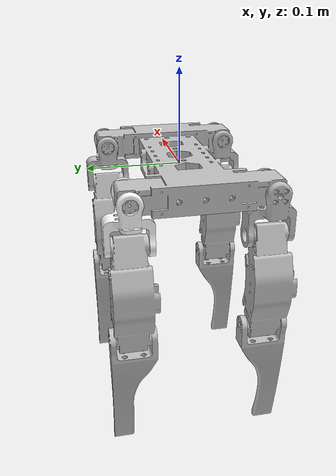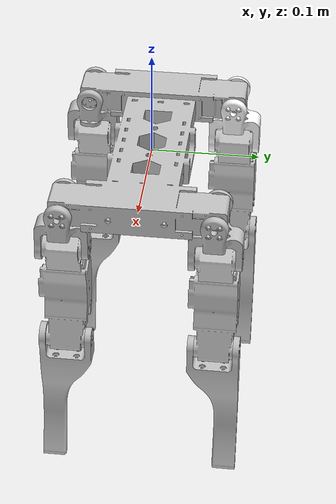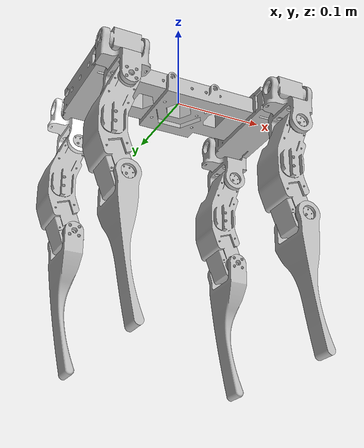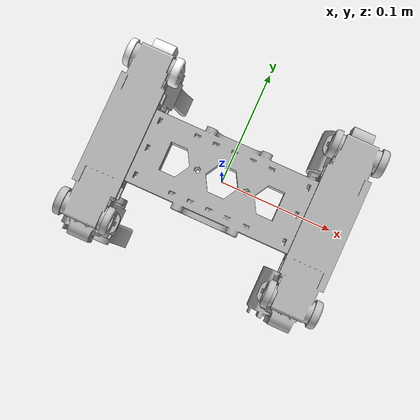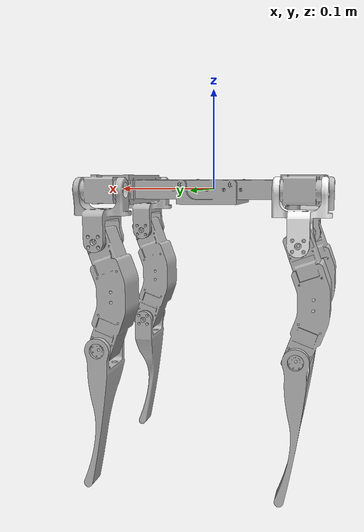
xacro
<?xml version="1.0"?>
<robot xmlns:xacro="http://www.ros.org/wiki/xacro" >
  <xacro:include filename="base.xacro"/>
  <xacro:include filename="front_right_leg.xacro"/>
  <xacro:include filename="gazebo_reference.xacro"/>
  <xacro:include filename="front_left_leg.xacro"/>
  <xacro:include filename="back_left_leg.xacro"/>
  <xacro:include filename="back_right_leg.xacro"/>
</robot>

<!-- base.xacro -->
<robot xmlns:xacro="http://www.ros.org/wiki/xacro" >
  <link name="base_link"/>

  <link name="base_footprint">
    <inertial>
      <origin xyz="-8.3007E-11 -1.4484E-09 -0.00034261" rpy="0 0 0" />
      <mass value="0.48631" />
      <inertia
        ixx="0.00020679"
        ixy="1.921E-06"
        ixz="-1.4063E-13"
        iyy="0.00035815"
        iyz="5.0084E-13"
        izz="0.00051558" />
    </inertial>
    <visual>
      <origin xyz="0 0 0" rpy="0 0 0" />
      <geometry>
        <mesh filename="package://clifford_description/meshes/base_footprint.STL" />
      </geometry>
      <material name="">
        <color rgba="0.75294 0.75294 0.75294 1" />
      </material>
    </visual>
    <collision>
      <origin xyz="0 0 0" rpy="0 0 0" />
      <geometry>
        <mesh filename="package://clifford_description/meshes/base_footprint.STL" />
      </geometry>
    </collision>
  </link>

  <joint name="base_joint" type="fixed">
      <origin xyz="0.0 0.0 0.0" rpy="0.0 0.0 0.0"/>
      <parent link="base_link"/>
      <child link="base_footprint"/>
      <axis xyz="0.0 0.0 0.0"/>
  </joint>
</robot>

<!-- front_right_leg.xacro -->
<robot xmlns:xacro="http://www.ros.org/wiki/xacro" >
  <!-- Description fo Clifford's front right shoulder -->
  <link name="front_right_shoulder">
    <inertial>
      <origin xyz="0.001145 0.00017681 -0.02221" rpy="0 0 0" />
      <mass value="0.025126" />
      <inertia
        ixx="7.276E-06"
        ixy="-2.8038E-12"
        ixz="-4.2637E-07"
        iyy="7.4277E-06"
        iyz="-1.0525E-08"
        izz="9.6529E-06" />
    </inertial>
    <visual>
      <origin xyz="0 0 0" rpy="0 0 0" />
      <geometry>
        <mesh filename="package://clifford_description/meshes/front_right_shoulder.STL" />
      </geometry>
      <material name="">
        <color rgba="0.75294 0.75294 0.75294 1" />
      </material>
    </visual>
    <collision>
      <origin xyz="0 0 0" rpy="0 0 0" />
      <geometry>
        <mesh filename="package://clifford_description/meshes/front_right_shoulder.STL" />
      </geometry>
    </collision>
  </link>

  <joint name="front_right_shoulder_joint" type="revolute">
    <origin xyz="0.095875 -0.070091 0.00015658" rpy="0 0 0" />
    <parent link="base_footprint" />
    <child link="front_right_shoulder" />
    <axis xyz="-1 0 0" />
    <limit lower="-2.618" upper="2.618" effort="1.5" velocity="10.5" />
    <dynamics damping="0.4" friction="0.4" />
  </joint>

  <!-- Description fo Clifford's front right elbow -->
  <link name="front_right_elbow">
    <inertial>
      <origin xyz="0.0530208937874927 0.000531743531269779 -0.00865031751779008" rpy="0 0 0" />
      <mass value="0.128871239808914" />
      <inertia
        ixx="1.82866796203456E-05"
        ixy="9.03702320897512E-07"
        ixz="-8.30852128006285E-09"
        iyy="3.16365309194388E-05"
        iyz="1.07073188550388E-07"
        izz="3.20527571542351E-05" />
    </inertial>
    <visual>
      <origin xyz="0 0 0" rpy="0 0 0" />
      <geometry>
        <mesh filename="package://clifford_description/meshes/front_right_elbow.STL" />
      </geometry>
      <material name="">
        <color rgba="0.752941176470588 0.752941176470588 0.752941176470588 1" />
      </material>
    </visual>
    <collision>
      <origin xyz="0 0 0" rpy="0 0 0" />
      <geometry>
        <mesh filename="package://clifford_description/meshes/front_right_elbow.STL" />
      </geometry>
    </collision>
  </link>

  <joint name="front_right_elbow_joint" type="revolute">
    <origin xyz="-2.5E-05 -2.4999E-05 -0.048" rpy="0 1.5708 0" />
    <parent link="front_right_shoulder" />
    <child link="front_right_elbow" />
    <axis xyz="0.61743 0.78662 0" />
    <limit lower="-2.618" upper="2.618" effort="1.5" velocity="10.5" />
    <dynamics damping="0.4" friction="0.4" />
  </joint>

  <!-- Description fo Clifford's front right wrist -->
  <link name="front_right_wrist">
    <inertial>
      <origin xyz="-0.0501854871379643 -0.00562091408227052 -0.00139057258160868" rpy="0 0 0" />
      <mass value="0.0434019946211029" />
      <inertia
        ixx="9.31273863324073E-06"
        ixy="-5.0825210151803E-06"
        ixz="-3.79907304251183E-06"
        iyy="4.22798179487166E-05"
        iyz="-3.54794316085274E-07"
        izz="4.88117060695608E-05" />
    </inertial>
    <visual>
      <origin xyz="0 0 0" rpy="0 0 0" />
      <geometry>
        <mesh filename="package://clifford_description/meshes/front_right_wrist.STL" />
      </geometry>
      <material name="">
        <color rgba="0.752941176470588 0.752941176470588 0.752941176470588 1" />
      </material>
    </visual>
    <collision>
      <origin xyz="0 0 0" rpy="0 0 0" />
      <geometry>
        <mesh filename="package://clifford_description/meshes/front_right_wrist.STL" />
      </geometry>
    </collision>
  </link>

  <joint name="front_right_wrist_joint" type="revolute">
    <origin xyz="0.10603 0 4.9995E-05" rpy="3.1416 0 3.1416" />
    <parent link="front_right_elbow" />
    <child link="front_right_wrist" />
    <axis xyz="0 1 0" />
    <limit lower="-2.618" upper="2.618" effort="1.5" velocity="10.5" />
    <dynamics damping="0.4" friction="0.4" />
  </joint>

  <!-- Description fo Clifford's front right foot -->
  <link name="front_right_foot" />

  <joint name="front_right_foot_joint" type="fixed">
    <origin xyz="-0.1417 -0.013225 -0.014113" rpy="0 0 0" />
    <parent link="front_right_wrist" />
    <child link="front_right_foot" />
    <axis xyz="0 0 0" />
  </joint>
</robot>

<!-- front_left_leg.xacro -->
<robot xmlns:xacro="http://www.ros.org/wiki/xacro" >
  <!-- Description fo Clifford's front left shoulder -->
  <link name="front_left_shoulder">
    <inertial>
      <origin xyz="0.00119495363353914 0.000176809986865173 -0.0222104021426803" rpy="0 0 0" />
      <mass value="0.0251261421169069" />
      <inertia
        ixx="7.27601970126055E-06"
        ixy="-2.80375542100427E-12"
        ixz="-4.26373747591097E-07"
        iyy="7.42765684115745E-06"
        iyz="-1.05248374132499E-08"
        izz="9.65290321850445E-06" />
    </inertial>
    <visual>
      <origin xyz="0 0 0" rpy="0 0 0" />
      <geometry>
        <mesh filename="package://clifford_description/meshes/front_left_shoulder.STL" />
      </geometry>
      <material name="">
        <color rgba="0.752941176470588 0.752941176470588 0.752941176470588 1" />
      </material>
    </visual>
    <collision>
      <origin xyz="0 0 0" rpy="0 0 0" />
      <geometry>
        <mesh filename="package://clifford_description/meshes/front_left_shoulder.STL" />
      </geometry>
    </collision>
  </link>

  <joint name="front_left_shoulder_joint" type="revolute">
    <origin xyz="0.0958750011976808 0.0701085708841457 -0.00014342068143483" rpy="0 0 0" />
    <parent link="base_footprint" />
    <child link="front_left_shoulder" />
    <axis xyz="-1 0 0" />
    <limit lower="-2.618" upper="2.618" effort="1.5" velocity="10.5" />
    <dynamics damping="0.4" friction="0.4" />
  </joint>

  <!-- Description fo Clifford's front left elbow -->
  <link name="front_left_elbow">
    <inertial>
      <origin xyz="0.0530168092815065 0.000531743532155654 -0.00867531583230774" rpy="0 0 0" />
      <mass value="0.128871239808788" />
      <inertia
        ixx="1.82866748457515E-05"
        ixy="9.03752705072398E-07"
        ixz="-1.81783232455001E-09"
        iyy="3.16365309194226E-05"
        iyz="1.06647082290351E-07"
        izz="3.20527619287412E-05" />
    </inertial>
    <visual>
      <origin xyz="0 0 0" rpy="0 0 0" />
      <geometry>
        <mesh filename="package://clifford_description/meshes/front_left_elbow.STL" />
      </geometry>
      <material name="">
        <color rgba="0.752941176470588 0.752941176470588 0.752941176470588 1" />
      </material>
    </visual>
    <collision>
      <origin xyz="0 0 0" rpy="0 0 0" />
      <geometry>
        <mesh filename="package://clifford_description/meshes/front_left_elbow.STL" />
      </geometry>
    </collision>
  </link>

  <joint name="front_left_elbow_joint" type="revolute">
    <origin xyz="2.4999E-05 -2.4999E-05 -0.048" rpy="0 1.5708 0" />
    <parent link="front_left_shoulder" />
    <child link="front_left_elbow" />
    <axis xyz="0.61743 0.78662 0" />
    <limit lower="-2.618" upper="2.618" effort="1.5" velocity="10.5" />
    <dynamics damping="0.4" friction="0.4" />
  </joint>

  <!-- Description fo Clifford's front left wrist -->
  <link name="front_left_wrist">
    <inertial>
      <origin xyz="-0.0501854721037143 0.00567090354060215 -0.00139060398951915" rpy="0 0 0" />
      <mass value="0.0434021710789183" />
      <inertia
        ixx="9.31275503211254E-06"
        ixy="5.08254401901519E-06"
        ixz="-3.79905192223709E-06"
        iyy="4.22800639447833E-05"
        iyz="3.54790961698845E-07"
        izz="4.88119505798513E-05" />
    </inertial>
    <visual>
      <origin xyz="0 0 0" rpy="0 0 0" />
      <geometry>
        <mesh filename="package://clifford_description/meshes/front_left_wrist.STL" />
      </geometry>
      <material name="">
        <color rgba="0.752941176470588 0.752941176470588 0.752941176470588 1" />
      </material>
    </visual>
    <collision>
      <origin xyz="0 0 0" rpy="0 0 0" />
      <geometry>
        <mesh filename="package://clifford_description/meshes/front_left_wrist.STL" />
      </geometry>
    </collision>
  </link>

  <joint name="front_left_wrist_joint" type="revolute">
    <origin xyz="0.10603 0 0" rpy="3.1416 0 3.1416" />
    <parent link="front_left_elbow" />
    <child link="front_left_wrist" />
    <axis xyz="0 1 0" />
    <limit lower="-2.618" upper="2.618" effort="1.5" velocity="10.5" />
    <dynamics damping="0.4" friction="0.4" />
  </joint>

  <!-- Description fo Clifford's front left foot -->
  <link name="front_left_foot" />

  <joint name="front_left_foot_joint" type="fixed">
    <origin xyz="-0.1417 0.013275 -0.014113" rpy="0 0 0" />
    <parent link="front_left_wrist" />
    <child link="front_left_foot" />
    <axis xyz="0 0 0" />
  </joint>
</robot>

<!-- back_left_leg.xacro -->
<robot xmlns:xacro="http://www.ros.org/wiki/xacro" >
  <!-- Description fo Clifford's back left shoulder -->
  <link name="back_left_shoulder">
    <inertial>
      <origin xyz="0 0 0" rpy="0 0 0" />
      <mass value="0" />
      <inertia
        ixx="0"
        ixy="0"
        ixz="0"
        iyy="0"
        iyz="0"
        izz="0" />
    </inertial>
    <visual>
      <origin xyz="0 0 0" rpy="0 0 0" />
      <geometry>
        <mesh filename="package://clifford_description/meshes/back_left_shoulder.STL" />
      </geometry>
      <material name="">
        <color rgba="1 1 1 1" />
      </material>
    </visual>
    <collision>
      <origin xyz="0 0 0" rpy="0 0 0" />
      <geometry>
        <mesh filename="package://clifford_description/meshes/back_left_shoulder.STL" />
      </geometry>
    </collision>
  </link>

  <joint name="back_left_shoulder_joint" type="revolute">
    <origin xyz="-0.0958750017732382 0.0700914250798084 0.000156578087562781" rpy="0 0 0" />
    <parent link="base_footprint" />
    <child link="back_left_shoulder" />
    <axis xyz="-1 0 0" />
    <limit lower="-2.618" upper="2.618" effort="1.5" velocity="10.5" />
    <dynamics damping="0.4" friction="0.4" />
  </joint>

  <!-- Description fo Clifford's back left elbow -->
  <link name="back_left_elbow">
    <inertial>
      <origin xyz="0.0530168092815064 0.000531743532155682 -0.00867531583230774" rpy="0 0 0" />
      <mass value="0.128871239808788" />
      <inertia
        ixx="1.82866748457515E-05"
        ixy="9.03752705072404E-07"
        ixz="-1.81783232454726E-09"
        iyy="3.16365309194226E-05"
        iyz="1.06647082290352E-07"
        izz="3.20527619287412E-05" />
    </inertial>
    <visual>
      <origin xyz="0 0 0" rpy="0 0 0" />
      <geometry>
        <mesh filename="package://clifford_description/meshes/back_left_elbow.STL" />
      </geometry>
      <material name="">
        <color rgba="0.752941176470588 0.752941176470588 0.752941176470588 1" />
      </material>
    </visual>
    <collision>
      <origin xyz="0 0 0" rpy="0 0 0" />
      <geometry>
        <mesh filename="package://clifford_description/meshes/back_left_elbow.STL" />
      </geometry>
    </collision>
  </link>

  <joint name="back_left_elbow_joint" type="revolute">
    <origin xyz="2.49991776781477E-05 -2.49992615339312E-05 -0.0480000005680917" rpy="0 1.5707963267949 0" />
    <parent link="back_left_shoulder" />
    <child link="back_left_elbow" />
    <axis xyz="0 0.999999999999999 0" />
    <limit lower="-2.618" upper="2.618" effort="1.5" velocity="10.5" />
    <dynamics damping="0.4" friction="0.4" />
  </joint>

  <!-- Description fo Clifford's back left wrist -->
  <link name="back_left_wrist">
    <inertial>
      <origin xyz="-0.0501854721037142 0.00562090541442317 -0.00139060398774386" rpy="0 0 0" />
      <mass value="0.0434021710789182" />
      <inertia
        ixx="9.31275503211253E-06"
        ixy="5.08254401901516E-06"
        ixz="-3.7990519222371E-06"
        iyy="4.22800639447833E-05"
        iyz="3.54790961698847E-07"
        izz="4.88119505798513E-05" />
    </inertial>
    <visual>
      <origin xyz="0 0 0" rpy="0 0 0" />
      <geometry>
        <mesh filename="package://clifford_description/meshes/back_left_wrist.STL" />
      </geometry>
      <material name="">
        <color rgba="0.752941176470588 0.752941176470588 0.752941176470588 1" />
      </material>
    </visual>
    <collision>
      <origin xyz="0 0 0" rpy="0 0 0" />
      <geometry>
        <mesh filename="package://clifford_description/meshes/back_left_wrist.STL" />
      </geometry>
    </collision>
  </link>

  <joint name="back_left_wrist_joint" type="revolute">
    <origin xyz="0.106033686469264 0 0" rpy="3.14159265358979 0 3.14159265358979" />
    <parent link="back_left_elbow" />
    <child link="back_left_wrist" />
    <axis xyz="1.32856310796055E-05 0.999999999911745 0" />
    <limit lower="-2.618" upper="2.618" effort="1.5" velocity="10.5" />
    <dynamics damping="0.4" friction="0.4" />
  </joint>

  <!-- Description fo Clifford's back left foot -->
  <link name="back_left_foot" />

  <joint name="back_left_foot_joint" type="fixed">
    <origin xyz="-0.141702532861941 0.0132249986098497 -0.0141130520913157" rpy="0 0 0" />
    <parent link="back_left_wrist" />
    <child link="back_left_foot" />
    <axis xyz="0 0 0" />
  </joint>
</robot>

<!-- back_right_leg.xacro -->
<robot xmlns:xacro="http://www.ros.org/wiki/xacro" >
  <!-- Description fo Clifford's back right shoulder -->
  <link name="back_right_shoulder">
    <inertial>
      <origin xyz="-0.00119495363353912 -0.000176809986865901 -0.0222104021426802" rpy="0 0 0" />
      <mass value="0.0251261421169069" />
      <inertia
        ixx="7.27601970126056E-06"
        ixy="-2.80375542182697E-12"
        ixz="4.263737475911E-07"
        iyy="7.42765684115746E-06"
        iyz="1.05248374132493E-08"
        izz="9.65290321850445E-06" />
    </inertial>
    <visual>
      <origin xyz="0 0 0" rpy="0 0 0" />
      <geometry>
        <mesh filename="package://clifford_description/meshes/back_right_shoulder.STL" />
      </geometry>
      <material name="">
        <color rgba="0.752941176470588 0.752941176470588 0.752941176470588 1" />
      </material>
    </visual>
    <collision>
      <origin xyz="0 0 0" rpy="0 0 0" />
      <geometry>
        <mesh filename="package://clifford_description/meshes/back_right_shoulder.STL" />
      </geometry>
    </collision>
  </link>

  <joint name="back_right_shoulder_joint" type="revolute">
    <origin xyz="-0.095875 -0.070109 0.00015658" rpy="0 0 0" />
    <parent link="base_footprint" />
    <child link="back_right_shoulder" />
    <axis xyz="-1 0 0" />
    <limit lower="-2.618" upper="2.618" effort="1.5" velocity="10.5" />
    <dynamics damping="0.4" friction="0.4" />
  </joint>

  <!-- Description fo Clifford's back right elbow -->
  <link name="back_right_elbow">
    <inertial>
      <origin xyz="0.0530168092815066 0.000531743532156383 -0.00867531583230777" rpy="0 0 0" />
      <mass value="0.128871239808788" />
      <inertia
        ixx="1.82866748457515E-05"
        ixy="9.03752705072398E-07"
        ixz="-1.81783232455234E-09"
        iyy="3.16365309194226E-05"
        iyz="1.06647082290352E-07"
        izz="3.20527619287412E-05" />
    </inertial>
    <visual>
      <origin xyz="0 0 0" rpy="0 0 0" />
      <geometry>
        <mesh filename="package://clifford_description/meshes/back_right_elbow.STL" />
      </geometry>
      <material name="">
        <color rgba="0.752941176470588 0.752941176470588 0.752941176470588 1" />
      </material>
    </visual>
    <collision>
      <origin xyz="0 0 0" rpy="0 0 0" />
      <geometry>
        <mesh filename="package://clifford_description/meshes/back_right_elbow.STL" />
      </geometry>
    </collision>
  </link>

  <joint name="back_right_elbow_joint" type="revolute">
    <origin xyz="-2.4999E-05 2.4999E-05 -0.048" rpy="0 1.5708 0" />
    <parent link="back_right_shoulder" />
    <child link="back_right_elbow" />
    <axis xyz="0 1 0" />
    <limit lower="-2.618" upper="2.618" effort="1.5" velocity="10.5" />
    <dynamics damping="0.4" friction="0.4" />
  </joint>

  <!-- Description fo Clifford's back right wrist -->
  <link name="back_right_wrist">
    <inertial>
      <origin xyz="-0.0501854871379641 -0.00562091408227047 -0.00139057258160866" rpy="0 0 0" />
      <mass value="0.0434019946211029" />
      <inertia
        ixx="9.31273863324073E-06"
        ixy="-5.08252101518028E-06"
        ixz="-3.79907304251183E-06"
        iyy="4.22798179487165E-05"
        iyz="-3.54794316085271E-07"
        izz="4.88117060695608E-05" />
    </inertial>
    <visual>
      <origin xyz="0 0 0" rpy="0 0 0" />
      <geometry>
        <mesh filename="package://clifford_description/meshes/back_right_wrist.STL" />
      </geometry>
      <material name="">
        <color rgba="0.752941176470588 0.752941176470588 0.752941176470588 1" />
      </material>
    </visual>
    <collision>
      <origin xyz="0 0 0" rpy="0 0 0" />
      <geometry>
        <mesh filename="package://clifford_description/meshes/back_right_wrist.STL" />
      </geometry>
    </collision>
  </link>

  <joint name="back_right_wrist_joint" type="revolute">
    <origin xyz="0.106033686469265 0 0" rpy="3.14159265358979 0 3.14159265358979" />
    <parent link="back_right_elbow" />
    <child link="back_right_wrist" />
    <axis xyz="1.32856310796055E-05 0.999999999911745 0" />
    <limit lower="-2.618" upper="2.618" effort="1.5" velocity="10.5" />
    <dynamics damping="0.4" friction="0.4" />
  </joint>

  <!-- Description fo Clifford's back right foott -->
  <link name="back_right_foot" />

  <joint name="back_right_foot_joint" type="fixed">
    <origin xyz="-0.141702532861941 -0.0132250006870532 -0.014113048791347" rpy="0 0 0" />
    <parent link="back_right_wrist" />
    <child link="back_right_foot" />
    <axis xyz="0 0 0" />
  </joint>
</robot>
